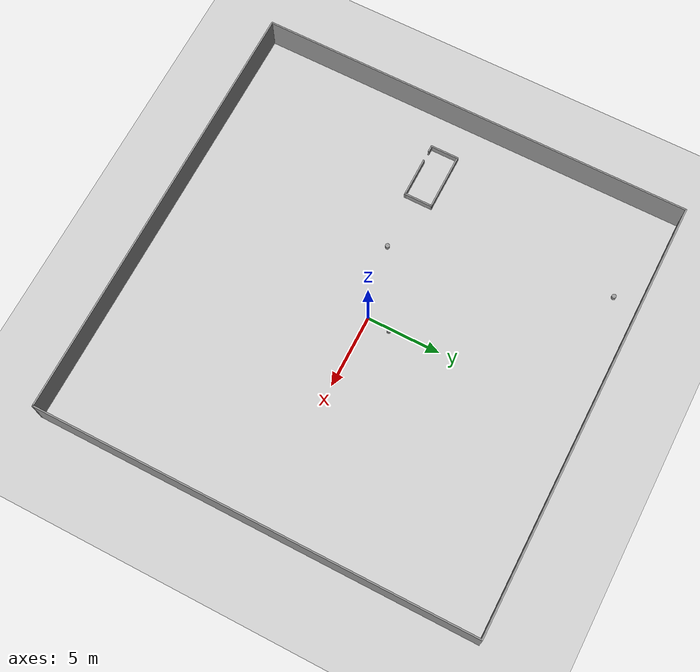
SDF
<sdf version="1.6">
 <world name="default">
  <model name="ground_plane">
   <static>1</static>
   <link name="link">
    <collision name="collision">
     <geometry><plane><normal>0 0 1</normal><size>30 30</size></plane></geometry>
     <surface>
      <contact><collide_bitmask>65535</collide_bitmask></contact>
      <friction><ode><mu>100</mu><mu2>50</mu2></ode></friction>
     </surface>
     <max_contacts>15</max_contacts>
    </collision>
    <visual name="visual">
     <cast_shadows>0</cast_shadows>
     <geometry><plane><normal>0 0 1</normal><size>30 30</size></plane></geometry>
     <material>
      <script><uri>file://media/materials/scripts/gazebo.material</uri><name>Gazebo/Grey</name></script>
     </material>
    </visual>
   </link>
  </model>
  <model name="outsidewall.sdf">
   <link name="Wall_3">
    <collision name="Wall_3_Collision">
     <geometry><box><size>30 0.10 2.5</size></box></geometry>
     <pose>0 0 1.25 0 -0 0</pose>
    </collision>
    <visual name="Wall_3_Visual">
     <pose>0 0 1.25 0 -0 0</pose>
     <geometry><box><size>30 0.10 2.5</size></box></geometry>
     <material>
      <script><uri>file://media/materials/scripts/gazebo.material</uri><name>Gazebo/Grey</name></script>
      <ambient>1 1 1 1</ambient>
     </material>
     <meta><layer>0</layer></meta>
    </visual>
    <pose>0 14.95 0 0 -0 0</pose>
   </link>
   <link name="Wall_5">
    <collision name="Wall_5_Collision">
     <geometry><box><size>30 0.10 2.5</size></box></geometry>
     <pose>0 0 1.25 0 -0 0</pose>
    </collision>
    <visual name="Wall_5_Visual">
     <pose>0 0 1.25 0 -0 0</pose>
     <geometry><box><size>30 0.10 2.5</size></box></geometry>
     <material>
      <script><uri>file://media/materials/scripts/gazebo.material</uri><name>Gazebo/Grey</name></script>
      <ambient>1 1 1 1</ambient>
     </material>
     <meta><layer>0</layer></meta>
    </visual>
    <pose>-14.95 0 0 0 -0 1.5707</pose>
   </link>
   <link name="Wall_6">
    <collision name="Wall_6_Collision">
     <geometry><box><size>30 0.10 2.5</size></box></geometry>
     <pose>0 0 1.25 0 -0 0</pose>
    </collision>
    <visual name="Wall_6_Visual">
     <pose>0 0 1.25 0 -0 0</pose>
     <geometry><box><size>30 0.10 2.5</size></box></geometry>
     <material>
      <script><uri>file://media/materials/scripts/gazebo.material</uri><name>Gazebo/Grey</name></script>
      <ambient>1 1 1 1</ambient>
     </material>
     <meta><layer>0</layer></meta>
    </visual>
    <pose>0 -14.95 0 0 -0 0</pose>
   </link>
   <link name="Wall_7">
    <collision name="Wall_7_Collision">
     <geometry><box><size>30 0.10 2.5</size></box></geometry>
     <pose>0 0 1.25 0 -0 0</pose>
    </collision>
    <visual name="Wall_7_Visual">
     <pose>0 0 1.25 0 -0 0</pose>
     <geometry><box><size>30 0.10 2.5</size></box></geometry>
     <material>
      <script><uri>file://media/materials/scripts/gazebo.material</uri><name>Gazebo/Grey</name></script>
      <ambient>1 1 1 1</ambient>
     </material>
     <meta><layer>0</layer></meta>
    </visual>
    <pose>14.95 0 0 0 -0 1.5707</pose>
   </link>
   <static>1</static>
  </model>
  <model name="cylinder_d=30">
   <link name="link_0">
    <inertial>
     <mass>1</mass>
     <inertia><ixx>0.145833</ixx><ixy>0</ixy><ixz>0</ixz><iyy>0.145833</iyy><iyz>0</iyz><izz>0.125</izz></inertia>
    </inertial>
    <pose>-8.45 13.25 0 0 -0 0</pose>
    <visual name="visual">
     <geometry><cylinder><radius>0.15</radius><length>0.5</length></cylinder></geometry>
     <material>
      <lighting>1</lighting>
      <script><uri>file://media/materials/scripts/gazebo.material</uri><name>Gazebo/Grey</name></script>
      <shader type="vertex"><normal_map>__default__</normal_map></shader>
      <ambient>0.3 0.3 0.3 1</ambient>
      <diffuse>0.7 0.7 0.7 1</diffuse>
      <specular>0.01 0.01 0.01 1</specular>
      <emissive>0 0 0 1</emissive>
     </material>
    </visual>
    <collision name="collision">
     <geometry><cylinder><radius>0.15</radius><length>0.5</length></cylinder></geometry>
     <surface>
      <friction>
       <ode><mu>1</mu><mu2>1</mu2><fdir1>0 0 0</fdir1><slip1>0</slip1><slip2>0</slip2></ode>
       <torsional>
        <coefficient>1</coefficient>
        <patch_radius>0</patch_radius>
        <surface_radius>0</surface_radius>
        <use_patch_radius>1</use_patch_radius>
        <ode><slip>0</slip></ode>
       </torsional>
      </friction>
      <bounce><restitution_coefficient>0</restitution_coefficient><threshold>1e+06</threshold></bounce>
      <contact>
       <collide_without_contact>0</collide_without_contact>
       <collide_without_contact_bitmask>1</collide_without_contact_bitmask>
       <collide_bitmask>1</collide_bitmask>
       <ode>
        <soft_cfm>0</soft_cfm>
        <soft_erp>0.2</soft_erp>
        <kp>1e+13</kp>
        <kd>1</kd>
        <max_vel>0.01</max_vel>
        <min_depth>0</min_depth>
       </ode>
       <bullet>
        <split_impulse>1</split_impulse>
        <split_impulse_penetration_threshold>-0.01</split_impulse_penetration_threshold>
        <soft_cfm>0</soft_cfm>
        <soft_erp>0.2</soft_erp>
        <kp>1e+13</kp>
        <kd>1</kd>
       </bullet>
      </contact>
     </surface>
    </collision>
   </link>
   <static>0</static>
  </model>
  <model name="cylinder_d=30">
   <link name="link_0">
    <inertial>
     <mass>1</mass>
     <inertia><ixx>0.145833</ixx><ixy>0</ixy><ixz>0</ixz><iyy>0.145833</iyy><iyz>0</iyz><izz>0.125</izz></inertia>
    </inertial>
    <pose>0.15 1.55 0 0 -0 0</pose>
    <visual name="visual">
     <geometry><cylinder><radius>0.15</radius><length>0.5</length></cylinder></geometry>
     <material>
      <lighting>1</lighting>
      <script><uri>file://media/materials/scripts/gazebo.material</uri><name>Gazebo/Grey</name></script>
      <shader type="vertex"><normal_map>__default__</normal_map></shader>
      <ambient>0.3 0.3 0.3 1</ambient>
      <diffuse>0.7 0.7 0.7 1</diffuse>
      <specular>0.01 0.01 0.01 1</specular>
      <emissive>0 0 0 1</emissive>
     </material>
    </visual>
    <collision name="collision">
     <geometry><cylinder><radius>0.15</radius><length>0.5</length></cylinder></geometry>
     <surface>
      <friction>
       <ode><mu>1</mu><mu2>1</mu2><fdir1>0 0 0</fdir1><slip1>0</slip1><slip2>0</slip2></ode>
       <torsional>
        <coefficient>1</coefficient>
        <patch_radius>0</patch_radius>
        <surface_radius>0</surface_radius>
        <use_patch_radius>1</use_patch_radius>
        <ode><slip>0</slip></ode>
       </torsional>
      </friction>
      <bounce><restitution_coefficient>0</restitution_coefficient><threshold>1e+06</threshold></bounce>
      <contact>
       <collide_without_contact>0</collide_without_contact>
       <collide_without_contact_bitmask>1</collide_without_contact_bitmask>
       <collide_bitmask>1</collide_bitmask>
       <ode>
        <soft_cfm>0</soft_cfm>
        <soft_erp>0.2</soft_erp>
        <kp>1e+13</kp>
        <kd>1</kd>
        <max_vel>0.01</max_vel>
        <min_depth>0</min_depth>
       </ode>
       <bullet>
        <split_impulse>1</split_impulse>
        <split_impulse_penetration_threshold>-0.01</split_impulse_penetration_threshold>
        <soft_cfm>0</soft_cfm>
        <soft_erp>0.2</soft_erp>
        <kp>1e+13</kp>
        <kd>1</kd>
       </bullet>
      </contact>
     </surface>
    </collision>
   </link>
   <static>0</static>
  </model>
  <model name="cylinder_d=30">
   <link name="link_0">
    <inertial>
     <mass>1</mass>
     <inertia><ixx>0.145833</ixx><ixy>0</ixy><ixz>0</ixz><iyy>0.145833</iyy><iyz>0</iyz><izz>0.125</izz></inertia>
    </inertial>
    <pose>-4.95 -1.15 0 0 -0 0</pose>
    <visual name="visual">
     <geometry><cylinder><radius>0.15</radius><length>0.5</length></cylinder></geometry>
     <material>
      <lighting>1</lighting>
      <script><uri>file://media/materials/scripts/gazebo.material</uri><name>Gazebo/Grey</name></script>
      <shader type="vertex"><normal_map>__default__</normal_map></shader>
      <ambient>0.3 0.3 0.3 1</ambient>
      <diffuse>0.7 0.7 0.7 1</diffuse>
      <specular>0.01 0.01 0.01 1</specular>
      <emissive>0 0 0 1</emissive>
     </material>
    </visual>
    <collision name="collision">
     <geometry><cylinder><radius>0.15</radius><length>0.5</length></cylinder></geometry>
     <surface>
      <friction>
       <ode><mu>1</mu><mu2>1</mu2><fdir1>0 0 0</fdir1><slip1>0</slip1><slip2>0</slip2></ode>
       <torsional>
        <coefficient>1</coefficient>
        <patch_radius>0</patch_radius>
        <surface_radius>0</surface_radius>
        <use_patch_radius>1</use_patch_radius>
        <ode><slip>0</slip></ode>
       </torsional>
      </friction>
      <bounce><restitution_coefficient>0</restitution_coefficient><threshold>1e+06</threshold></bounce>
      <contact>
       <collide_without_contact>0</collide_without_contact>
       <collide_without_contact_bitmask>1</collide_without_contact_bitmask>
       <collide_bitmask>1</collide_bitmask>
       <ode>
        <soft_cfm>0</soft_cfm>
        <soft_erp>0.2</soft_erp>
        <kp>1e+13</kp>
        <kd>1</kd>
        <max_vel>0.01</max_vel>
        <min_depth>0</min_depth>
       </ode>
       <bullet>
        <split_impulse>1</split_impulse>
        <split_impulse_penetration_threshold>-0.01</split_impulse_penetration_threshold>
        <soft_cfm>0</soft_cfm>
        <soft_erp>0.2</soft_erp>
        <kp>1e+13</kp>
        <kd>1</kd>
       </bullet>
      </contact>
     </surface>
    </collision>
   </link>
   <static>0</static>
  </model>
  <model name="shape2">
   <pose>-10.6 -0.8 0 0 -0 0</pose>
   <link name="Wall_0">
    <collision name="Wall_0_Collision">
     <geometry><box><size>3.98685 0.1 0.5</size></box></geometry>
     <pose>0 0 0.25 0 -0 0</pose>
    </collision>
    <visual name="Wall_0_Visual">
     <pose>0 0 0.25 0 -0 0</pose>
     <geometry><box><size>3.98685 0.1 0.5</size></box></geometry>
     <material>
      <script><uri>file://media/materials/scripts/gazebo.material</uri><name>Gazebo/Grey</name></script>
      <ambient>1 1 1 1</ambient>
     </material>
     <meta><layer>0</layer></meta>
    </visual>
    <pose>0.003288 0.95 0 0 -0 0</pose>
   </link>
   <link name="Wall_1">
    <collision name="Wall_1_Collision">
     <geometry><box><size>2 0.1 0.5</size></box></geometry>
     <pose>0 0 0.25 0 -0 0</pose>
    </collision>
    <visual name="Wall_1_Visual">
     <pose>0 0 0.25 0 -0 0</pose>
     <geometry><box><size>2 0.1 0.5</size></box></geometry>
     <material>
      <script><uri>file://media/materials/scripts/gazebo.material</uri><name>Gazebo/Grey</name></script>
      <ambient>1 1 1 1</ambient>
     </material>
     <meta><layer>0</layer></meta>
    </visual>
    <pose>1.94671 0 0 0 -0 -1.5708</pose>
   </link>
   <link name="Wall_2">
    <collision name="Wall_2_Collision">
     <geometry><box><size>2.8 0.1 0.5</size></box></geometry>
     <pose>0 0 0.25 0 -0 0</pose>
    </collision>
    <visual name="Wall_2_Visual">
     <pose>0 0 0.25 0 -0 0</pose>
     <geometry><box><size>2.8 0.1 0.5</size></box></geometry>
     <material>
      <script><uri>file://media/materials/scripts/gazebo.material</uri><name>Gazebo/Grey</name></script>
      <ambient>1 1 1 1</ambient>
     </material>
     <meta><layer>0</layer></meta>
    </visual>
    <pose>0.596712 -0.95 0 0 -0 3.14159</pose>
   </link>
   <link name="Wall_4">
    <collision name="Wall_4_Collision">
     <geometry><box><size>2 0.1 0.5</size></box></geometry>
     <pose>0 0 0.25 0 -0 0</pose>
    </collision>
    <visual name="Wall_4_Visual">
     <pose>0 0 0.25 0 -0 0</pose>
     <geometry><box><size>2 0.1 0.5</size></box></geometry>
     <material>
      <script><uri>file://media/materials/scripts/gazebo.material</uri><name>Gazebo/Grey</name></script>
      <ambient>1 1 1 1</ambient>
     </material>
     <meta><layer>0</layer></meta>
    </visual>
    <pose>-1.94671 0 0 0 -0 -1.5708</pose>
   </link>
   <link name="Wall_5">
    <collision name="Wall_5_Collision">
     <geometry><box><size>0.5 0.1 0.5</size></box></geometry>
     <pose>0 0 0.25 0 -0 0</pose>
    </collision>
    <visual name="Wall_5_Visual">
     <pose>0 0 0.25 0 -0 0</pose>
     <geometry><box><size>0.5 0.1 0.5</size></box></geometry>
     <material>
      <script><uri>file://media/materials/scripts/gazebo.material</uri><name>Gazebo/Grey</name></script>
      <ambient>1 1 1 1</ambient>
     </material>
     <meta><layer>0</layer></meta>
    </visual>
    <pose>-1.74671 -0.95 0 0 -0 0</pose>
   </link>
   <static>1</static>
  </model>
 </world>
</sdf>
